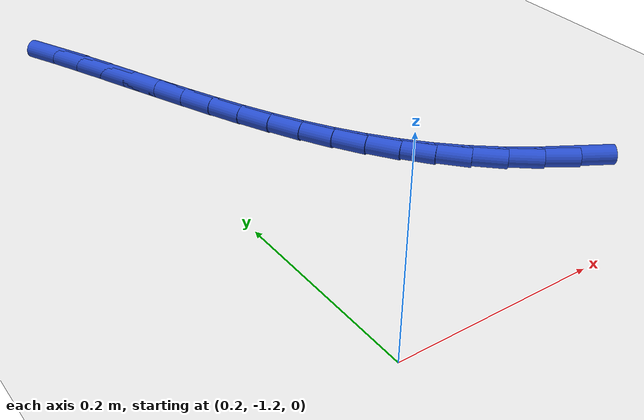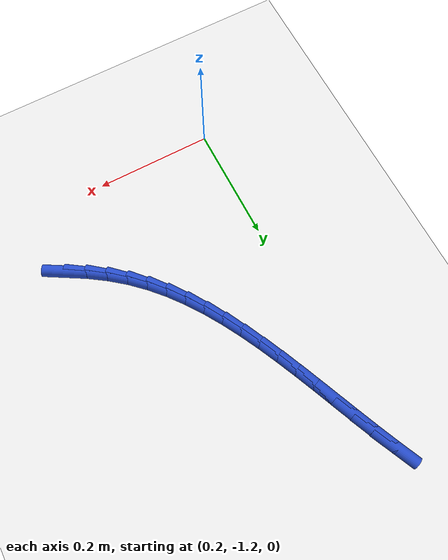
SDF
<sdf version="1.6">
 <world name="default">
  <model name="ground_plane">
   <static>1</static>
   <link name="link">
    <collision name="collision">
     <geometry><plane><normal>0 0 1</normal><size>100 100</size></plane></geometry>
     <surface><friction><ode><mu>100</mu><mu2>50</mu2></ode></friction></surface>
    </collision>
    <visual name="visual">
     <cast_shadows>0</cast_shadows>
     <geometry><plane><normal>0 0 1</normal><size>100 100</size></plane></geometry>
     <material>
      <script><uri>file://media/materials/scripts/gazebo.material</uri><name>Gazebo/WhiteGlow</name></script>
     </material>
    </visual>
   </link>
  </model>
  <model name="line">
   <link name="link_175">
    <pose>0.515146419095023 -1.0805582384772987 0.01 0 1.57 -0.5335330880215912</pose>
    <collision name="collision">
     <geometry><cylinder><radius>0.01</radius><length>0.08</length></cylinder></geometry>
    </collision>
    <visual name="visual">
     <material>
      <script><name>Gazebo/Blue</name><uri>file://media/materials/scripts/gazebo.material</uri></script>
     </material>
     <geometry><cylinder><radius>0.01</radius><length>0.08</length></cylinder></geometry>
    </visual>
   </link>
   <link name="link_176">
    <pose>0.484915841992422 -1.0627018567329563 0.01 0 1.57 -0.6027278036575163</pose>
    <collision name="collision">
     <geometry><cylinder><radius>0.01</radius><length>0.08</length></cylinder></geometry>
    </collision>
    <visual name="visual">
     <material>
      <script><name>Gazebo/Blue</name><uri>file://media/materials/scripts/gazebo.material</uri></script>
     </material>
     <geometry><cylinder><radius>0.01</radius><length>0.08</length></cylinder></geometry>
    </visual>
   </link>
   <link name="link_177">
    <pose>0.45628926974670836 -1.043002514276279 0.01 0 1.57 -0.6777884412341805</pose>
    <collision name="collision">
     <geometry><cylinder><radius>0.01</radius><length>0.08</length></cylinder></geometry>
    </collision>
    <visual name="visual">
     <material>
      <script><name>Gazebo/Blue</name><uri>file://media/materials/scripts/gazebo.material</uri></script>
     </material>
     <geometry><cylinder><radius>0.01</radius><length>0.08</length></cylinder></geometry>
    </visual>
   </link>
   <link name="link_178">
    <pose>0.4294922887908707 -1.0214306731915435 0.01 0 1.57 -0.7577571430903698</pose>
    <collision name="collision">
     <geometry><cylinder><radius>0.01</radius><length>0.08</length></cylinder></geometry>
    </collision>
    <visual name="visual">
     <material>
      <script><name>Gazebo/Blue</name><uri>file://media/materials/scripts/gazebo.material</uri></script>
     </material>
     <geometry><cylinder><radius>0.01</radius><length>0.08</length></cylinder></geometry>
    </visual>
   </link>
   <link name="link_179">
    <pose>0.4047061504359748 -0.99797823790873 0.01 0 1.57 -0.8341936124111107</pose>
    <collision name="collision">
     <geometry><cylinder><radius>0.01</radius><length>0.08</length></cylinder></geometry>
    </collision>
    <visual name="visual">
     <material>
      <script><name>Gazebo/Blue</name><uri>file://media/materials/scripts/gazebo.material</uri></script>
     </material>
     <geometry><cylinder><radius>0.01</radius><length>0.08</length></cylinder></geometry>
    </visual>
   </link>
   <link name="link_180">
    <pose>0.38184289296504176 -0.9727673156984652 0.01 0 1.57 -0.9031334752011337</pose>
    <collision name="collision">
     <geometry><cylinder><radius>0.01</radius><length>0.08</length></cylinder></geometry>
    </collision>
    <visual name="visual">
     <material>
      <script><name>Gazebo/Blue</name><uri>file://media/materials/scripts/gazebo.material</uri></script>
     </material>
     <geometry><cylinder><radius>0.01</radius><length>0.08</length></cylinder></geometry>
    </visual>
   </link>
   <link name="link_181">
    <pose>0.3607134873300557 -0.9459688942800409 0.01 0 1.57 -0.9640210187246053</pose>
    <collision name="collision">
     <geometry><cylinder><radius>0.01</radius><length>0.08</length></cylinder></geometry>
    </collision>
    <visual name="visual">
     <material>
      <script><name>Gazebo/Blue</name><uri>file://media/materials/scripts/gazebo.material</uri></script>
     </material>
     <geometry><cylinder><radius>0.01</radius><length>0.08</length></cylinder></geometry>
    </visual>
   </link>
   <link name="link_182">
    <pose>0.34112872421318724 -0.9177540485588795 0.01 0 1.57 -1.0166835471109075</pose>
    <collision name="collision">
     <geometry><cylinder><radius>0.01</radius><length>0.08</length></cylinder></geometry>
    </collision>
    <visual name="visual">
     <material>
      <script><name>Gazebo/Blue</name><uri>file://media/materials/scripts/gazebo.material</uri></script>
     </material>
     <geometry><cylinder><radius>0.01</radius><length>0.08</length></cylinder></geometry>
    </visual>
   </link>
   <link name="link_183">
    <pose>0.32289939429660625 -0.8882938534404015 0.01 0 1.57 -1.0612109011193915</pose>
    <collision name="collision">
     <geometry><cylinder><radius>0.01</radius><length>0.08</length></cylinder></geometry>
    </collision>
    <visual name="visual">
     <material>
      <script><name>Gazebo/Blue</name><uri>file://media/materials/scripts/gazebo.material</uri></script>
     </material>
     <geometry><cylinder><radius>0.01</radius><length>0.08</length></cylinder></geometry>
    </visual>
   </link>
   <link name="link_184">
    <pose>0.30583628826248416 -0.8577593838300298 0.01 0 1.57 -1.0978468021811527</pose>
    <collision name="collision">
     <geometry><cylinder><radius>0.01</radius><length>0.08</length></cylinder></geometry>
    </collision>
    <visual name="visual">
     <material>
      <script><name>Gazebo/Blue</name><uri>file://media/materials/scripts/gazebo.material</uri></script>
     </material>
     <geometry><cylinder><radius>0.01</radius><length>0.08</length></cylinder></geometry>
    </visual>
   </link>
   <link name="link_185">
    <pose>0.2897501967929911 -0.8263217146331858 0.01 0 1.57 -1.1269008376477163</pose>
    <collision name="collision">
     <geometry><cylinder><radius>0.01</radius><length>0.08</length></cylinder></geometry>
    </collision>
    <visual name="visual">
     <material>
      <script><name>Gazebo/Blue</name><uri>file://media/materials/scripts/gazebo.material</uri></script>
     </material>
     <geometry><cylinder><radius>0.01</radius><length>0.08</length></cylinder></geometry>
    </visual>
   </link>
   <link name="link_186">
    <pose>0.27445191057029733 -0.7941519207552908 0.01 0 1.57 -1.1486842693242891</pose>
    <collision name="collision">
     <geometry><cylinder><radius>0.01</radius><length>0.08</length></cylinder></geometry>
    </collision>
    <visual name="visual">
     <material>
      <script><name>Gazebo/Blue</name><uri>file://media/materials/scripts/gazebo.material</uri></script>
     </material>
     <geometry><cylinder><radius>0.01</radius><length>0.08</length></cylinder></geometry>
    </visual>
   </link>
   <link name="link_187">
    <pose>0.25975222027657346 -0.7614210771017668 0.01 0 1.57 -1.163466869174355</pose>
    <collision name="collision">
     <geometry><cylinder><radius>0.01</radius><length>0.08</length></cylinder></geometry>
    </collision>
    <visual name="visual">
     <material>
      <script><name>Gazebo/Blue</name><uri>file://media/materials/scripts/gazebo.material</uri></script>
     </material>
     <geometry><cylinder><radius>0.01</radius><length>0.08</length></cylinder></geometry>
    </visual>
   </link>
   <link name="link_188">
    <pose>0.24546191659399 -0.7283002585780352 0.01 0 1.57 -1.1714499663235467</pose>
    <collision name="collision">
     <geometry><cylinder><radius>0.01</radius><length>0.08</length></cylinder></geometry>
    </collision>
    <visual name="visual">
     <material>
      <script><name>Gazebo/Blue</name><uri>file://media/materials/scripts/gazebo.material</uri></script>
     </material>
     <geometry><cylinder><radius>0.01</radius><length>0.08</length></cylinder></geometry>
    </visual>
   </link>
   <link name="link_189">
    <pose>0.2313917902047169 -0.6949605400895166 0.01 0 1.57 -1.172751113837371</pose>
    <collision name="collision">
     <geometry><cylinder><radius>0.01</radius><length>0.08</length></cylinder></geometry>
    </collision>
    <visual name="visual">
     <material>
      <script><name>Gazebo/Blue</name><uri>file://media/materials/scripts/gazebo.material</uri></script>
     </material>
     <geometry><cylinder><radius>0.01</radius><length>0.08</length></cylinder></geometry>
    </visual>
   </link>
   <link name="link_190">
    <pose>0.2173526317909255 -0.6615729965416347 0.01 0 1.57 -1.167396985839279</pose>
    <collision name="collision">
     <geometry><cylinder><radius>0.01</radius><length>0.08</length></cylinder></geometry>
    </collision>
    <visual name="visual">
     <material>
      <script><name>Gazebo/Blue</name><uri>file://media/materials/scripts/gazebo.material</uri></script>
     </material>
     <geometry><cylinder><radius>0.01</radius><length>0.08</length></cylinder></geometry>
    </visual>
   </link>
   <link name="link_191">
    <pose>0.20315523203478583 -0.6283087028398098 0.01 0 1.57 -1.15532261570195</pose>
    <collision name="collision">
     <geometry><cylinder><radius>0.01</radius><length>0.08</length></cylinder></geometry>
    </collision>
    <visual name="visual">
     <material>
      <script><name>Gazebo/Blue</name><uri>file://media/materials/scripts/gazebo.material</uri></script>
     </material>
     <geometry><cylinder><radius>0.01</radius><length>0.08</length></cylinder></geometry>
    </visual>
   </link>
   <link name="link_192">
    <pose>0.18861038161846838 -0.5953387338894641 0.01 0 1.57 -1.1363766294380155</pose>
    <collision name="collision">
     <geometry><cylinder><radius>0.01</radius><length>0.08</length></cylinder></geometry>
    </collision>
    <visual name="visual">
     <material>
      <script><name>Gazebo/Blue</name><uri>file://media/materials/scripts/gazebo.material</uri></script>
     </material>
     <geometry><cylinder><radius>0.01</radius><length>0.08</length></cylinder></geometry>
    </visual>
   </link>
  </model>
 </world>
</sdf>
